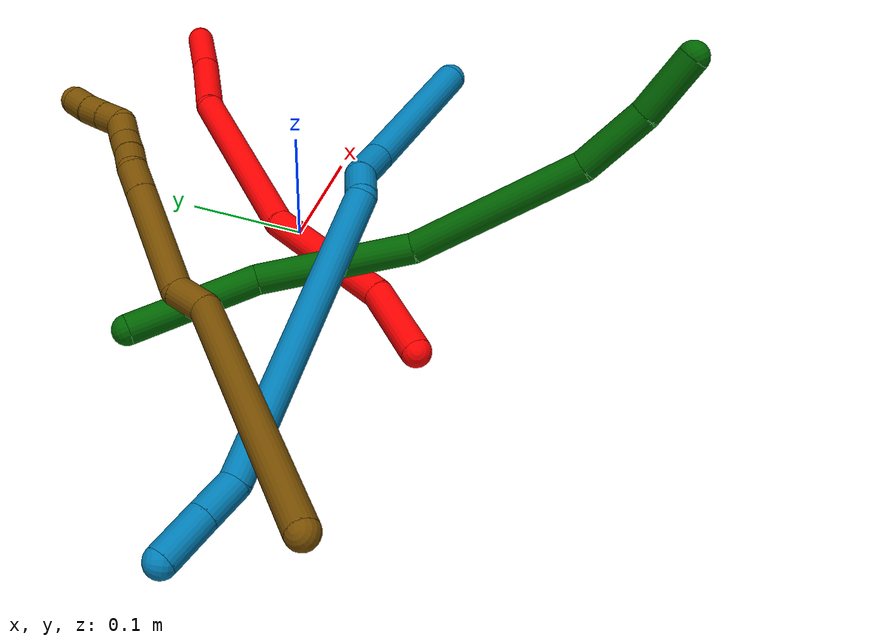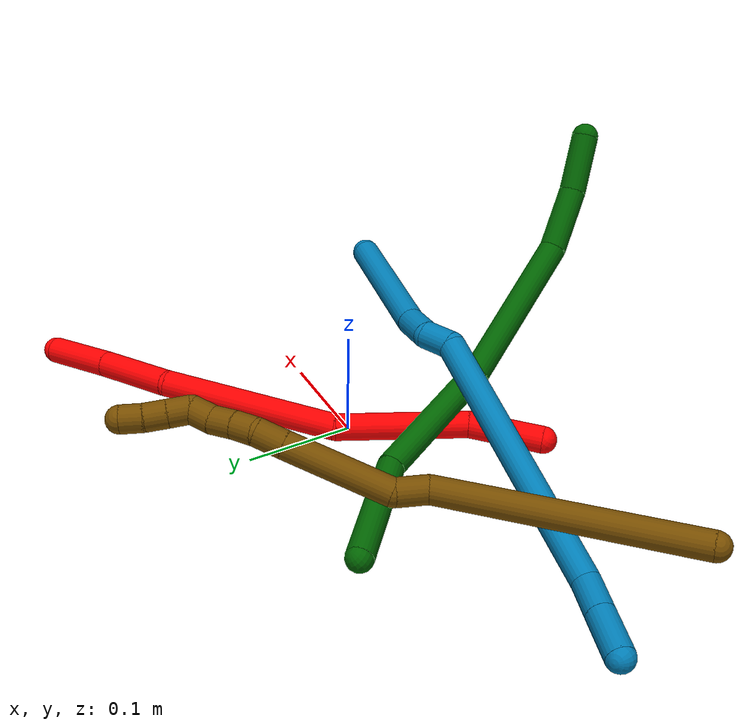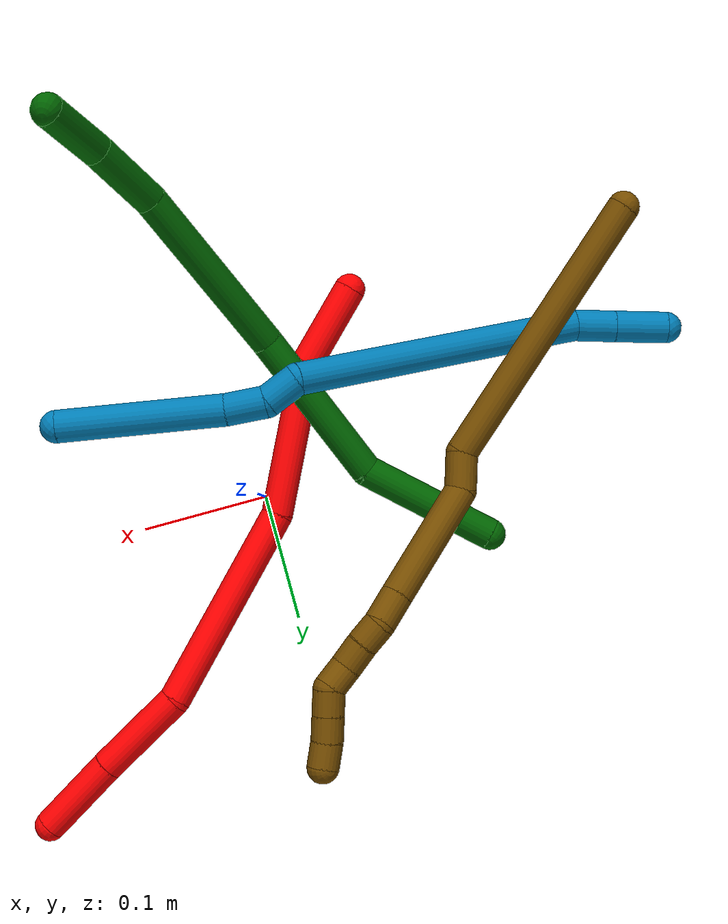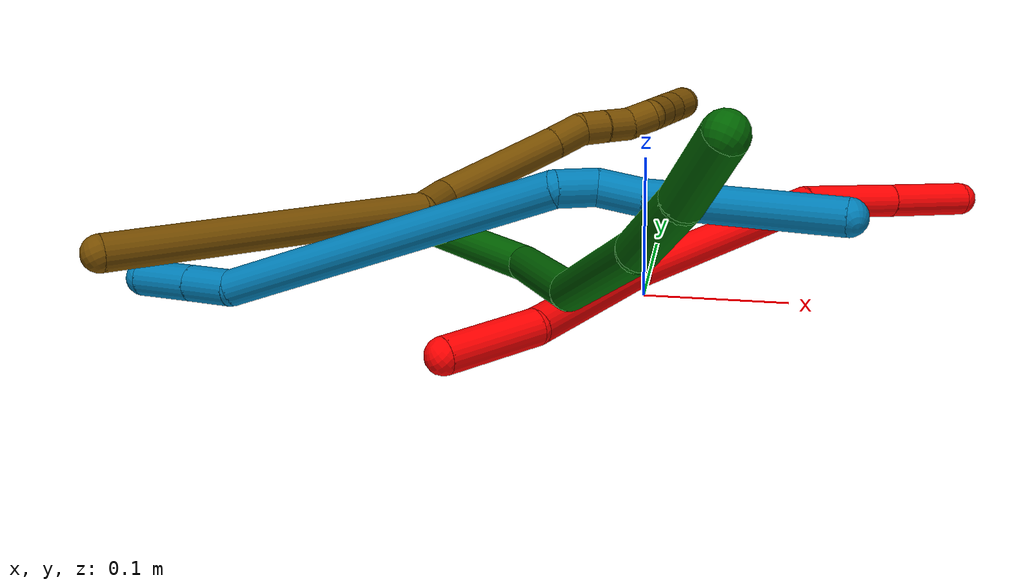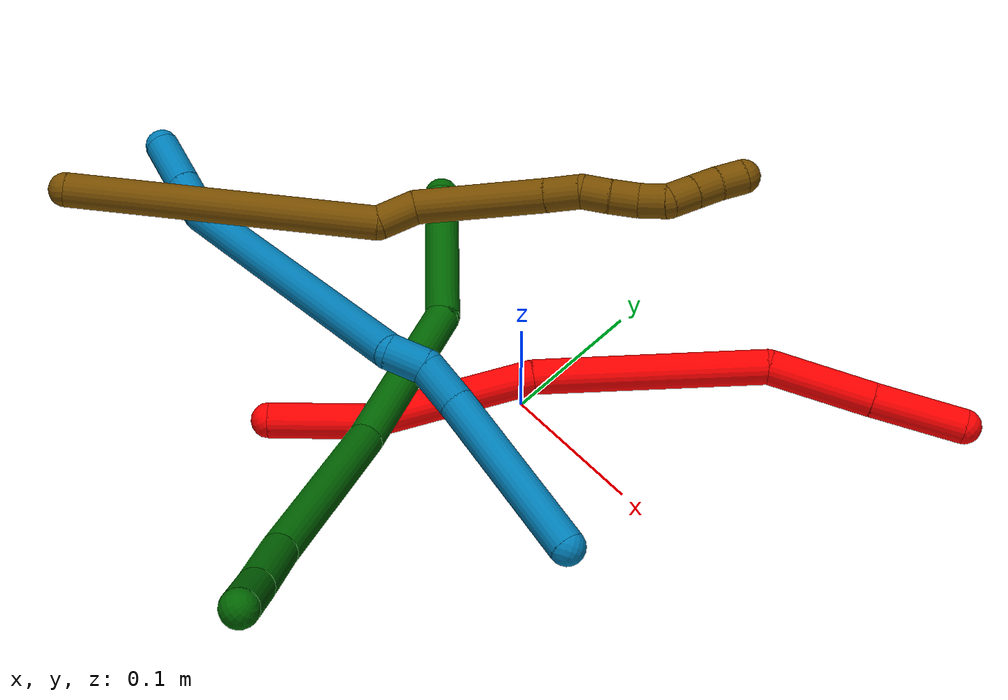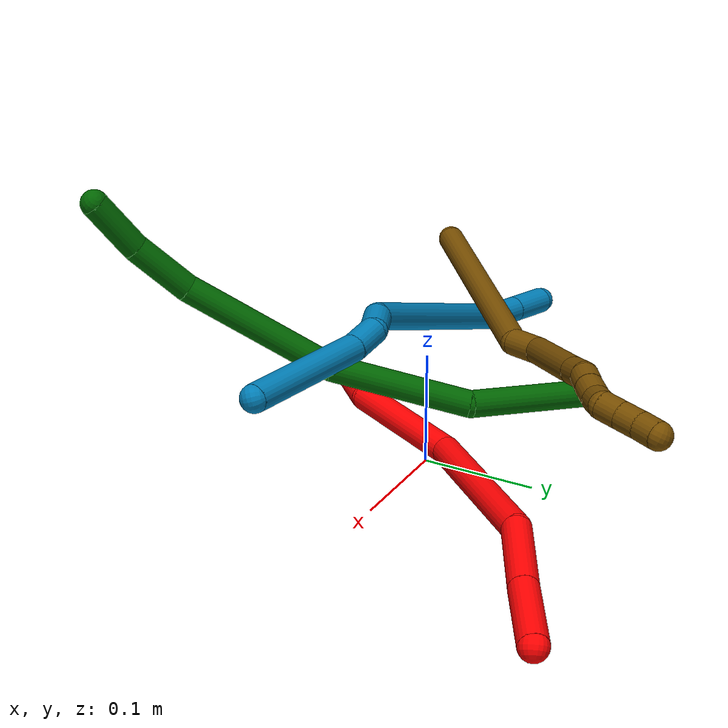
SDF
<sdf version="1.7">
 <world name="default">
  <model name="2">
   <static>0</static>
   <link name="2">
    <collision name="collision-cylinder-e_1_1_4">
     <pose>0.024521 0.01348 -0.019956 -2.54749 0.794426 -1.88085</pose>
     <geometry><cylinder><radius>0.0125</radius><length>0.068738</length></cylinder></geometry>
     <surface>
      <friction><ode><mu>1.16</mu><mu2>1.16</mu2><slip1>0</slip1><slip2>0</slip2></ode></friction>
      <contact><ode><kp>1e+06</kp><kd>1</kd><max_vel>0</max_vel><min_depth>0.001</min_depth></ode></contact>
     </surface>
    </collision>
    <visual name="visual-cylinder-e_1_1_4">
     <pose>0.024521 0.01348 -0.019956 -2.54749 0.794426 -1.88085</pose>
     <geometry><cylinder><radius>0.0125</radius><length>0.068738</length></cylinder></geometry>
     <material><ambient>1 0 0 1</ambient></material>
    </visual>
    <collision name="collision-cylinder-e_2_4_5">
     <pose>0.083125 0.067867 -0.069987 -2.20478 0.5912 -1.08358</pose>
     <geometry><cylinder><radius>0.0125</radius><length>0.122305</length></cylinder></geometry>
     <surface>
      <friction><ode><mu>1.16</mu><mu2>1.16</mu2><slip1>0</slip1><slip2>0</slip2></ode></friction>
      <contact><ode><kp>1e+06</kp><kd>1</kd><max_vel>0</max_vel><min_depth>0.001</min_depth></ode></contact>
     </surface>
    </collision>
    <visual name="visual-cylinder-e_2_4_5">
     <pose>0.083125 0.067867 -0.069987 -2.20478 0.5912 -1.08358</pose>
     <geometry><cylinder><radius>0.0125</radius><length>0.122305</length></cylinder></geometry>
     <material><ambient>1 0 0 1</ambient></material>
    </visual>
    <collision name="collision-cylinder-e_3_5_6">
     <pose>0.179844 0.143005 -0.142937 -2.46782 0.851442 -1.82626</pose>
     <geometry><cylinder><radius>0.0125</radius><length>0.16653</length></cylinder></geometry>
     <surface>
      <friction><ode><mu>1.16</mu><mu2>1.16</mu2><slip1>0</slip1><slip2>0</slip2></ode></friction>
      <contact><ode><kp>1e+06</kp><kd>1</kd><max_vel>0</max_vel><min_depth>0.001</min_depth></ode></contact>
     </surface>
    </collision>
    <visual name="visual-cylinder-e_3_5_6">
     <pose>0.179844 0.143005 -0.142937 -2.46782 0.851442 -1.82626</pose>
     <geometry><cylinder><radius>0.0125</radius><length>0.16653</length></cylinder></geometry>
     <material><ambient>1 0 0 1</ambient></material>
    </visual>
    <collision name="collision-cylinder-e_4_6_7">
     <pose>0.26852 0.18204 -0.212784 -2.96537 0.760025 -2.70627</pose>
     <geometry><cylinder><radius>0.0125</radius><length>0.075598</length></cylinder></geometry>
     <surface>
      <friction><ode><mu>1.16</mu><mu2>1.16</mu2><slip1>0</slip1><slip2>0</slip2></ode></friction>
      <contact><ode><kp>1e+06</kp><kd>1</kd><max_vel>0</max_vel><min_depth>0.001</min_depth></ode></contact>
     </surface>
    </collision>
    <visual name="visual-cylinder-e_4_6_7">
     <pose>0.26852 0.18204 -0.212784 -2.96537 0.760025 -2.70627</pose>
     <geometry><cylinder><radius>0.0125</radius><length>0.075598</length></cylinder></geometry>
     <material><ambient>1 0 0 1</ambient></material>
    </visual>
    <collision name="collision-cylinder-e_5_7_2">
     <pose>0.317297 0.192165 -0.263659 -2.92248 0.748345 -2.59535</pose>
     <geometry><cylinder><radius>0.0125</radius><length>0.066829</length></cylinder></geometry>
     <surface>
      <friction><ode><mu>1.16</mu><mu2>1.16</mu2><slip1>0</slip1><slip2>0</slip2></ode></friction>
      <contact><ode><kp>1e+06</kp><kd>1</kd><max_vel>0</max_vel><min_depth>0.001</min_depth></ode></contact>
     </surface>
    </collision>
    <visual name="visual-cylinder-e_5_7_2">
     <pose>0.317297 0.192165 -0.263659 -2.92248 0.748345 -2.59535</pose>
     <geometry><cylinder><radius>0.0125</radius><length>0.066829</length></cylinder></geometry>
     <material><ambient>1 0 0 1</ambient></material>
    </visual>
    <collision name="collision-sphere-2">
     <pose>0.340034 0.197488 -0.28756 0 -0 0</pose>
     <geometry><sphere><radius>0.0125</radius></sphere></geometry>
     <surface>
      <friction><ode><mu>1.16</mu><mu2>1.16</mu2><slip1>0</slip1><slip2>0</slip2></ode></friction>
      <contact><ode><kp>1e+06</kp><kd>1</kd><max_vel>0</max_vel><min_depth>0.001</min_depth></ode></contact>
     </surface>
    </collision>
    <visual name="visual-sphere-2">
     <pose>0.340034 0.197488 -0.28756 0 -0 0</pose>
     <geometry><sphere><radius>0.0125</radius></sphere></geometry>
     <material><ambient>1 0 0 1</ambient></material>
    </visual>
    <collision name="collision-sphere-7">
     <pose>0.294561 0.186843 -0.239758 0 -0 0</pose>
     <geometry><sphere><radius>0.0125</radius></sphere></geometry>
     <surface>
      <friction><ode><mu>1.16</mu><mu2>1.16</mu2><slip1>0</slip1><slip2>0</slip2></ode></friction>
      <contact><ode><kp>1e+06</kp><kd>1</kd><max_vel>0</max_vel><min_depth>0.001</min_depth></ode></contact>
     </surface>
    </collision>
    <visual name="visual-sphere-7">
     <pose>0.294561 0.186843 -0.239758 0 -0 0</pose>
     <geometry><sphere><radius>0.0125</radius></sphere></geometry>
     <material><ambient>1 0 0 1</ambient></material>
    </visual>
    <collision name="collision-sphere-6">
     <pose>0.242479 0.177237 -0.185811 0 -0 0</pose>
     <geometry><sphere><radius>0.0125</radius></sphere></geometry>
     <surface>
      <friction><ode><mu>1.16</mu><mu2>1.16</mu2><slip1>0</slip1><slip2>0</slip2></ode></friction>
      <contact><ode><kp>1e+06</kp><kd>1</kd><max_vel>0</max_vel><min_depth>0.001</min_depth></ode></contact>
     </surface>
    </collision>
    <visual name="visual-sphere-6">
     <pose>0.242479 0.177237 -0.185811 0 -0 0</pose>
     <geometry><sphere><radius>0.0125</radius></sphere></geometry>
     <material><ambient>1 0 0 1</ambient></material>
    </visual>
    <collision name="collision-sphere-5">
     <pose>0.117209 0.108774 -0.100062 0 -0 0</pose>
     <geometry><sphere><radius>0.0125</radius></sphere></geometry>
     <surface>
      <friction><ode><mu>1.16</mu><mu2>1.16</mu2><slip1>0</slip1><slip2>0</slip2></ode></friction>
      <contact><ode><kp>1e+06</kp><kd>1</kd><max_vel>0</max_vel><min_depth>0.001</min_depth></ode></contact>
     </surface>
    </collision>
    <visual name="visual-sphere-5">
     <pose>0.117209 0.108774 -0.100062 0 -0 0</pose>
     <geometry><sphere><radius>0.0125</radius></sphere></geometry>
     <material><ambient>1 0 0 1</ambient></material>
    </visual>
    <collision name="collision-sphere-1">
     <geometry><sphere><radius>0.0125</radius></sphere></geometry>
     <surface>
      <friction><ode><mu>1.16</mu><mu2>1.16</mu2><slip1>0</slip1><slip2>0</slip2></ode></friction>
      <contact><ode><kp>1e+06</kp><kd>1</kd><max_vel>0</max_vel><min_depth>0.001</min_depth></ode></contact>
     </surface>
    </collision>
    <visual name="visual-sphere-1">
     <geometry><sphere><radius>0.0125</radius></sphere></geometry>
     <material><ambient>1 0 0 1</ambient></material>
    </visual>
    <collision name="collision-sphere-4">
     <pose>0.049042 0.026961 -0.039911 0 -0 0</pose>
     <geometry><sphere><radius>0.0125</radius></sphere></geometry>
     <surface>
      <friction><ode><mu>1.16</mu><mu2>1.16</mu2><slip1>0</slip1><slip2>0</slip2></ode></friction>
      <contact><ode><kp>1e+06</kp><kd>1</kd><max_vel>0</max_vel><min_depth>0.001</min_depth></ode></contact>
     </surface>
    </collision>
    <visual name="visual-sphere-4">
     <pose>0.049042 0.026961 -0.039911 0 -0 0</pose>
     <geometry><sphere><radius>0.0125</radius></sphere></geometry>
     <material><ambient>1 0 0 1</ambient></material>
    </visual>
    <inertial>
     <pose>0.166612 0.119292 -0.134882 0 -0 0</pose>
     <mass>0.5</mass>
     <inertia>
      <ixx>-0.000434</ixx>
      <ixy>0</ixy>
      <ixz>0</ixz>
      <iyy>-3.7e-05</iyy>
      <iyz>0</iyz>
      <izz>-0.000758</izz>
     </inertia>
    </inertial>
   </link>
   <pose>-0.109023 -0.141371 0.012119 0.009749 -0.697214 0.370482</pose>
  </model>
  <model name="6">
   <static>0</static>
   <link name="6">
    <collision name="collision-cylinder-e_1_1_4">
     <pose>0.049926 -0.023185 -0.004822 1.77586 1.1279 1.3218</pose>
     <geometry><cylinder><radius>0.0125</radius><length>0.110516</length></cylinder></geometry>
     <surface>
      <friction><ode><mu>1.16</mu><mu2>1.16</mu2><slip1>0</slip1><slip2>0</slip2></ode></friction>
      <contact><ode><kp>1e+06</kp><kd>1</kd><max_vel>0</max_vel><min_depth>0.001</min_depth></ode></contact>
     </surface>
    </collision>
    <visual name="visual-cylinder-e_1_1_4">
     <pose>0.049926 -0.023185 -0.004822 1.77586 1.1279 1.3218</pose>
     <geometry><cylinder><radius>0.0125</radius><length>0.110516</length></cylinder></geometry>
     <material><ambient>0 0.392157 0.003922 1</ambient></material>
    </visual>
    <collision name="collision-cylinder-e_2_4_5">
     <pose>0.139933 -0.094963 -0.023735 1.85304 0.669949 0.867837</pose>
     <geometry><cylinder><radius>0.0125</radius><length>0.129094</length></cylinder></geometry>
     <surface>
      <friction><ode><mu>1.16</mu><mu2>1.16</mu2><slip1>0</slip1><slip2>0</slip2></ode></friction>
      <contact><ode><kp>1e+06</kp><kd>1</kd><max_vel>0</max_vel><min_depth>0.001</min_depth></ode></contact>
     </surface>
    </collision>
    <visual name="visual-cylinder-e_2_4_5">
     <pose>0.139933 -0.094963 -0.023735 1.85304 0.669949 0.867837</pose>
     <geometry><cylinder><radius>0.0125</radius><length>0.129094</length></cylinder></geometry>
     <material><ambient>0 0.392157 0.003922 1</ambient></material>
    </visual>
    <collision name="collision-cylinder-e_3_5_6">
     <pose>0.218578 -0.205919 -0.034484 1.51724 0.553201 0.525686</pose>
     <geometry><cylinder><radius>0.0125</radius><length>0.146799</length></cylinder></geometry>
     <surface>
      <friction><ode><mu>1.16</mu><mu2>1.16</mu2><slip1>0</slip1><slip2>0</slip2></ode></friction>
      <contact><ode><kp>1e+06</kp><kd>1</kd><max_vel>0</max_vel><min_depth>0.001</min_depth></ode></contact>
     </surface>
    </collision>
    <visual name="visual-cylinder-e_3_5_6">
     <pose>0.218578 -0.205919 -0.034484 1.51724 0.553201 0.525686</pose>
     <geometry><cylinder><radius>0.0125</radius><length>0.146799</length></cylinder></geometry>
     <material><ambient>0 0.392157 0.003922 1</ambient></material>
    </visual>
    <collision name="collision-cylinder-e_4_6_7">
     <pose>0.271513 -0.292791 -0.022214 1.22151 0.503521 0.35631</pose>
     <geometry><cylinder><radius>0.0125</radius><length>0.059564</length></cylinder></geometry>
     <surface>
      <friction><ode><mu>1.16</mu><mu2>1.16</mu2><slip1>0</slip1><slip2>0</slip2></ode></friction>
      <contact><ode><kp>1e+06</kp><kd>1</kd><max_vel>0</max_vel><min_depth>0.001</min_depth></ode></contact>
     </surface>
    </collision>
    <visual name="visual-cylinder-e_4_6_7">
     <pose>0.271513 -0.292791 -0.022214 1.22151 0.503521 0.35631</pose>
     <geometry><cylinder><radius>0.0125</radius><length>0.059564</length></cylinder></geometry>
     <material><ambient>0 0.392157 0.003922 1</ambient></material>
    </visual>
    <collision name="collision-cylinder-e_5_7_2">
     <pose>0.296499 -0.33883 -0.000894 1.04848 0.403881 0.235658</pose>
     <geometry><cylinder><radius>0.0125</radius><length>0.054028</length></cylinder></geometry>
     <surface>
      <friction><ode><mu>1.16</mu><mu2>1.16</mu2><slip1>0</slip1><slip2>0</slip2></ode></friction>
      <contact><ode><kp>1e+06</kp><kd>1</kd><max_vel>0</max_vel><min_depth>0.001</min_depth></ode></contact>
     </surface>
    </collision>
    <visual name="visual-cylinder-e_5_7_2">
     <pose>0.296499 -0.33883 -0.000894 1.04848 0.403881 0.235658</pose>
     <geometry><cylinder><radius>0.0125</radius><length>0.054028</length></cylinder></geometry>
     <material><ambient>0 0.392157 0.003922 1</ambient></material>
    </visual>
    <collision name="collision-sphere-2">
     <pose>0.307116 -0.360359 0.011499 0 -0 0</pose>
     <geometry><sphere><radius>0.0125</radius></sphere></geometry>
     <surface>
      <friction><ode><mu>1.16</mu><mu2>1.16</mu2><slip1>0</slip1><slip2>0</slip2></ode></friction>
      <contact><ode><kp>1e+06</kp><kd>1</kd><max_vel>0</max_vel><min_depth>0.001</min_depth></ode></contact>
     </surface>
    </collision>
    <visual name="visual-sphere-2">
     <pose>0.307116 -0.360359 0.011499 0 -0 0</pose>
     <geometry><sphere><radius>0.0125</radius></sphere></geometry>
     <material><ambient>0 0.392157 0.003922 1</ambient></material>
    </visual>
    <collision name="collision-sphere-7">
     <pose>0.285883 -0.317302 -0.013286 0 -0 0</pose>
     <geometry><sphere><radius>0.0125</radius></sphere></geometry>
     <surface>
      <friction><ode><mu>1.16</mu><mu2>1.16</mu2><slip1>0</slip1><slip2>0</slip2></ode></friction>
      <contact><ode><kp>1e+06</kp><kd>1</kd><max_vel>0</max_vel><min_depth>0.001</min_depth></ode></contact>
     </surface>
    </collision>
    <visual name="visual-sphere-7">
     <pose>0.285883 -0.317302 -0.013286 0 -0 0</pose>
     <geometry><sphere><radius>0.0125</radius></sphere></geometry>
     <material><ambient>0 0.392157 0.003922 1</ambient></material>
    </visual>
    <collision name="collision-sphere-6">
     <pose>0.257143 -0.268281 -0.031141 0 -0 0</pose>
     <geometry><sphere><radius>0.0125</radius></sphere></geometry>
     <surface>
      <friction><ode><mu>1.16</mu><mu2>1.16</mu2><slip1>0</slip1><slip2>0</slip2></ode></friction>
      <contact><ode><kp>1e+06</kp><kd>1</kd><max_vel>0</max_vel><min_depth>0.001</min_depth></ode></contact>
     </surface>
    </collision>
    <visual name="visual-sphere-6">
     <pose>0.257143 -0.268281 -0.031141 0 -0 0</pose>
     <geometry><sphere><radius>0.0125</radius></sphere></geometry>
     <material><ambient>0 0.392157 0.003922 1</ambient></material>
    </visual>
    <collision name="collision-sphere-5">
     <pose>0.180013 -0.143557 -0.037827 0 -0 0</pose>
     <geometry><sphere><radius>0.0125</radius></sphere></geometry>
     <surface>
      <friction><ode><mu>1.16</mu><mu2>1.16</mu2><slip1>0</slip1><slip2>0</slip2></ode></friction>
      <contact><ode><kp>1e+06</kp><kd>1</kd><max_vel>0</max_vel><min_depth>0.001</min_depth></ode></contact>
     </surface>
    </collision>
    <visual name="visual-sphere-5">
     <pose>0.180013 -0.143557 -0.037827 0 -0 0</pose>
     <geometry><sphere><radius>0.0125</radius></sphere></geometry>
     <material><ambient>0 0.392157 0.003922 1</ambient></material>
    </visual>
    <collision name="collision-sphere-1">
     <geometry><sphere><radius>0.0125</radius></sphere></geometry>
     <surface>
      <friction><ode><mu>1.16</mu><mu2>1.16</mu2><slip1>0</slip1><slip2>0</slip2></ode></friction>
      <contact><ode><kp>1e+06</kp><kd>1</kd><max_vel>0</max_vel><min_depth>0.001</min_depth></ode></contact>
     </surface>
    </collision>
    <visual name="visual-sphere-1">
     <geometry><sphere><radius>0.0125</radius></sphere></geometry>
     <material><ambient>0 0.392157 0.003922 1</ambient></material>
    </visual>
    <collision name="collision-sphere-4">
     <pose>0.099853 -0.04637 -0.009644 0 -0 0</pose>
     <geometry><sphere><radius>0.0125</radius></sphere></geometry>
     <surface>
      <friction><ode><mu>1.16</mu><mu2>1.16</mu2><slip1>0</slip1><slip2>0</slip2></ode></friction>
      <contact><ode><kp>1e+06</kp><kd>1</kd><max_vel>0</max_vel><min_depth>0.001</min_depth></ode></contact>
     </surface>
    </collision>
    <visual name="visual-sphere-4">
     <pose>0.099853 -0.04637 -0.009644 0 -0 0</pose>
     <geometry><sphere><radius>0.0125</radius></sphere></geometry>
     <material><ambient>0 0.392157 0.003922 1</ambient></material>
    </visual>
    <inertial>
     <pose>0.175721 -0.161592 -0.020061 0 -0 0</pose>
     <mass>0.5</mass>
     <inertia>
      <ixx>0.000641</ixx>
      <ixy>0</ixy>
      <ixz>0</ixz>
      <iyy>0.000501</iyy>
      <iyz>0</iyz>
      <izz>6.9e-05</izz>
     </inertia>
    </inertial>
   </link>
   <pose>-0.164962 0.07655 0.011491 -0.729615 0.168291 -0.362091</pose>
  </model>
  <model name="9">
   <static>0</static>
   <link name="9">
    <collision name="collision-cylinder-e_1_1_4">
     <pose>0.015943 -0.001834 -0.013129 3.00279 0.877159 2.84734</pose>
     <geometry><cylinder><radius>0.0125</radius><length>0.041469</length></cylinder></geometry>
     <surface>
      <friction><ode><mu>1.16</mu><mu2>1.16</mu2><slip1>0</slip1><slip2>0</slip2></ode></friction>
      <contact><ode><kp>1e+06</kp><kd>1</kd><max_vel>0</max_vel><min_depth>0.001</min_depth></ode></contact>
     </surface>
    </collision>
    <visual name="visual-cylinder-e_1_1_4">
     <pose>0.015943 -0.001834 -0.013129 3.00279 0.877159 2.84734</pose>
     <geometry><cylinder><radius>0.0125</radius><length>0.041469</length></cylinder></geometry>
     <material><ambient>0 0.490196 0.709804 1</ambient></material>
    </visual>
    <collision name="collision-cylinder-e_2_4_5">
     <pose>0.044392 -0.005094 -0.036746 3.00649 0.868404 2.85185</pose>
     <geometry><cylinder><radius>0.0125</radius><length>0.032767</length></cylinder></geometry>
     <surface>
      <friction><ode><mu>1.16</mu><mu2>1.16</mu2><slip1>0</slip1><slip2>0</slip2></ode></friction>
      <contact><ode><kp>1e+06</kp><kd>1</kd><max_vel>0</max_vel><min_depth>0.001</min_depth></ode></contact>
     </surface>
    </collision>
    <visual name="visual-cylinder-e_2_4_5">
     <pose>0.044392 -0.005094 -0.036746 3.00649 0.868404 2.85185</pose>
     <geometry><cylinder><radius>0.0125</radius><length>0.032767</length></cylinder></geometry>
     <material><ambient>0 0.490196 0.709804 1</ambient></material>
    </visual>
    <collision name="collision-cylinder-e_3_5_6">
     <pose>0.164269 -0.039318 -0.087484 2.45786 1.12038 2.10949</pose>
     <geometry><cylinder><radius>0.0125</radius><length>0.238534</length></cylinder></geometry>
     <surface>
      <friction><ode><mu>1.16</mu><mu2>1.16</mu2><slip1>0</slip1><slip2>0</slip2></ode></friction>
      <contact><ode><kp>1e+06</kp><kd>1</kd><max_vel>0</max_vel><min_depth>0.001</min_depth></ode></contact>
     </surface>
    </collision>
    <visual name="visual-cylinder-e_3_5_6">
     <pose>0.164269 -0.039318 -0.087484 2.45786 1.12038 2.10949</pose>
     <geometry><cylinder><radius>0.0125</radius><length>0.238534</length></cylinder></geometry>
     <material><ambient>0 0.490196 0.709804 1</ambient></material>
    </visual>
    <collision name="collision-cylinder-e_4_6_7">
     <pose>0.284996 -0.068925 -0.129087 -1.9715 1.31685 -1.72533</pose>
     <geometry><cylinder><radius>0.0125</radius><length>0.027596</length></cylinder></geometry>
     <surface>
      <friction><ode><mu>1.16</mu><mu2>1.16</mu2><slip1>0</slip1><slip2>0</slip2></ode></friction>
      <contact><ode><kp>1e+06</kp><kd>1</kd><max_vel>0</max_vel><min_depth>0.001</min_depth></ode></contact>
     </surface>
    </collision>
    <visual name="visual-cylinder-e_4_6_7">
     <pose>0.284996 -0.068925 -0.129087 -1.9715 1.31685 -1.72533</pose>
     <geometry><cylinder><radius>0.0125</radius><length>0.027596</length></cylinder></geometry>
     <material><ambient>0 0.490196 0.709804 1</ambient></material>
    </visual>
    <collision name="collision-cylinder-e_5_7_8">
     <pose>0.311444 -0.062766 -0.139074 -2.81064 0.961843 -2.52207</pose>
     <geometry><cylinder><radius>0.0125</radius><length>0.031922</length></cylinder></geometry>
     <surface>
      <friction><ode><mu>1.16</mu><mu2>1.16</mu2><slip1>0</slip1><slip2>0</slip2></ode></friction>
      <contact><ode><kp>1e+06</kp><kd>1</kd><max_vel>0</max_vel><min_depth>0.001</min_depth></ode></contact>
     </surface>
    </collision>
    <visual name="visual-cylinder-e_5_7_8">
     <pose>0.311444 -0.062766 -0.139074 -2.81064 0.961843 -2.52207</pose>
     <geometry><cylinder><radius>0.0125</radius><length>0.031922</length></cylinder></geometry>
     <material><ambient>0 0.490196 0.709804 1</ambient></material>
    </visual>
    <collision name="collision-cylinder-e_6_8_2">
     <pose>0.377072 -0.059462 -0.184005 -3.13229 0.966193 -3.12386</pose>
     <geometry><cylinder><radius>0.0125</radius><length>0.127713</length></cylinder></geometry>
     <surface>
      <friction><ode><mu>1.16</mu><mu2>1.16</mu2><slip1>0</slip1><slip2>0</slip2></ode></friction>
      <contact><ode><kp>1e+06</kp><kd>1</kd><max_vel>0</max_vel><min_depth>0.001</min_depth></ode></contact>
     </surface>
    </collision>
    <visual name="visual-cylinder-e_6_8_2">
     <pose>0.377072 -0.059462 -0.184005 -3.13229 0.966193 -3.12386</pose>
     <geometry><cylinder><radius>0.0125</radius><length>0.127713</length></cylinder></geometry>
     <material><ambient>0 0.490196 0.709804 1</ambient></material>
    </visual>
    <collision name="collision-sphere-2">
     <pose>0.429609 -0.059124 -0.220302 0 -0 0</pose>
     <geometry><sphere><radius>0.0125</radius></sphere></geometry>
     <surface>
      <friction><ode><mu>1.16</mu><mu2>1.16</mu2><slip1>0</slip1><slip2>0</slip2></ode></friction>
      <contact><ode><kp>1e+06</kp><kd>1</kd><max_vel>0</max_vel><min_depth>0.001</min_depth></ode></contact>
     </surface>
    </collision>
    <visual name="visual-sphere-2">
     <pose>0.429609 -0.059124 -0.220302 0 -0 0</pose>
     <geometry><sphere><radius>0.0125</radius></sphere></geometry>
     <material><ambient>0 0.490196 0.709804 1</ambient></material>
    </visual>
    <collision name="collision-sphere-4">
     <pose>0.031886 -0.003668 -0.026258 0 -0 0</pose>
     <geometry><sphere><radius>0.0125</radius></sphere></geometry>
     <surface>
      <friction><ode><mu>1.16</mu><mu2>1.16</mu2><slip1>0</slip1><slip2>0</slip2></ode></friction>
      <contact><ode><kp>1e+06</kp><kd>1</kd><max_vel>0</max_vel><min_depth>0.001</min_depth></ode></contact>
     </surface>
    </collision>
    <visual name="visual-sphere-4">
     <pose>0.031886 -0.003668 -0.026258 0 -0 0</pose>
     <geometry><sphere><radius>0.0125</radius></sphere></geometry>
     <material><ambient>0 0.490196 0.709804 1</ambient></material>
    </visual>
    <collision name="collision-sphere-1">
     <geometry><sphere><radius>0.0125</radius></sphere></geometry>
     <surface>
      <friction><ode><mu>1.16</mu><mu2>1.16</mu2><slip1>0</slip1><slip2>0</slip2></ode></friction>
      <contact><ode><kp>1e+06</kp><kd>1</kd><max_vel>0</max_vel><min_depth>0.001</min_depth></ode></contact>
     </surface>
    </collision>
    <visual name="visual-sphere-1">
     <geometry><sphere><radius>0.0125</radius></sphere></geometry>
     <material><ambient>0 0.490196 0.709804 1</ambient></material>
    </visual>
    <collision name="collision-sphere-8">
     <pose>0.324536 -0.059799 -0.147708 0 -0 0</pose>
     <geometry><sphere><radius>0.0125</radius></sphere></geometry>
     <surface>
      <friction><ode><mu>1.16</mu><mu2>1.16</mu2><slip1>0</slip1><slip2>0</slip2></ode></friction>
      <contact><ode><kp>1e+06</kp><kd>1</kd><max_vel>0</max_vel><min_depth>0.001</min_depth></ode></contact>
     </surface>
    </collision>
    <visual name="visual-sphere-8">
     <pose>0.324536 -0.059799 -0.147708 0 -0 0</pose>
     <geometry><sphere><radius>0.0125</radius></sphere></geometry>
     <material><ambient>0 0.490196 0.709804 1</ambient></material>
    </visual>
    <collision name="collision-sphere-5">
     <pose>0.056897 -0.006519 -0.047234 0 -0 0</pose>
     <geometry><sphere><radius>0.0125</radius></sphere></geometry>
     <surface>
      <friction><ode><mu>1.16</mu><mu2>1.16</mu2><slip1>0</slip1><slip2>0</slip2></ode></friction>
      <contact><ode><kp>1e+06</kp><kd>1</kd><max_vel>0</max_vel><min_depth>0.001</min_depth></ode></contact>
     </surface>
    </collision>
    <visual name="visual-sphere-5">
     <pose>0.056897 -0.006519 -0.047234 0 -0 0</pose>
     <geometry><sphere><radius>0.0125</radius></sphere></geometry>
     <material><ambient>0 0.490196 0.709804 1</ambient></material>
    </visual>
    <collision name="collision-sphere-6">
     <pose>0.271641 -0.072116 -0.127735 0 -0 0</pose>
     <geometry><sphere><radius>0.0125</radius></sphere></geometry>
     <surface>
      <friction><ode><mu>1.16</mu><mu2>1.16</mu2><slip1>0</slip1><slip2>0</slip2></ode></friction>
      <contact><ode><kp>1e+06</kp><kd>1</kd><max_vel>0</max_vel><min_depth>0.001</min_depth></ode></contact>
     </surface>
    </collision>
    <visual name="visual-sphere-6">
     <pose>0.271641 -0.072116 -0.127735 0 -0 0</pose>
     <geometry><sphere><radius>0.0125</radius></sphere></geometry>
     <material><ambient>0 0.490196 0.709804 1</ambient></material>
    </visual>
    <collision name="collision-sphere-7">
     <pose>0.298352 -0.065733 -0.13044 0 -0 0</pose>
     <geometry><sphere><radius>0.0125</radius></sphere></geometry>
     <surface>
      <friction><ode><mu>1.16</mu><mu2>1.16</mu2><slip1>0</slip1><slip2>0</slip2></ode></friction>
      <contact><ode><kp>1e+06</kp><kd>1</kd><max_vel>0</max_vel><min_depth>0.001</min_depth></ode></contact>
     </surface>
    </collision>
    <visual name="visual-sphere-7">
     <pose>0.298352 -0.065733 -0.13044 0 -0 0</pose>
     <geometry><sphere><radius>0.0125</radius></sphere></geometry>
     <material><ambient>0 0.490196 0.709804 1</ambient></material>
    </visual>
    <inertial>
     <pose>0.214526 -0.042243 -0.108236 0 -0 0</pose>
     <mass>0.5</mass>
     <inertia>
      <ixx>9.3e-05</ixx>
      <ixy>0</ixy>
      <ixz>0</ixz>
      <iyy>0.001626</iyy>
      <iyz>0</iyz>
      <izz>-0.000893</izz>
     </inertia>
    </inertial>
   </link>
   <pose>-0.34425 -0.045006 0.011489 -1.27709 -0.215266 0.40409</pose>
  </model>
  <model name="12">
   <static>0</static>
   <link name="12">
    <collision name="collision-cylinder-e_1_1_4">
     <pose>0.040717 0.101294 0.027333 -1.30724 0.370199 -0.284888</pose>
     <geometry><cylinder><radius>0.0125</radius><length>0.225082</length></cylinder></geometry>
     <surface>
      <friction><ode><mu>1.16</mu><mu2>1.16</mu2><slip1>0</slip1><slip2>0</slip2></ode></friction>
      <contact><ode><kp>1e+06</kp><kd>1</kd><max_vel>0</max_vel><min_depth>0.001</min_depth></ode></contact>
     </surface>
    </collision>
    <visual name="visual-cylinder-e_1_1_4">
     <pose>0.040717 0.101294 0.027333 -1.30724 0.370199 -0.284888</pose>
     <geometry><cylinder><radius>0.0125</radius><length>0.225082</length></cylinder></geometry>
     <material><ambient>0.466667 0.301961 0 1</ambient></material>
    </visual>
    <collision name="collision-cylinder-e_2_4_5">
     <pose>0.092049 0.212896 0.052887 -1.74157 0.792703 -0.922247</pose>
     <geometry><cylinder><radius>0.0125</radius><length>0.029804</length></cylinder></geometry>
     <surface>
      <friction><ode><mu>1.16</mu><mu2>1.16</mu2><slip1>0</slip1><slip2>0</slip2></ode></friction>
      <contact><ode><kp>1e+06</kp><kd>1</kd><max_vel>0</max_vel><min_depth>0.001</min_depth></ode></contact>
     </surface>
    </collision>
    <visual name="visual-cylinder-e_2_4_5">
     <pose>0.092049 0.212896 0.052887 -1.74157 0.792703 -0.922247</pose>
     <geometry><cylinder><radius>0.0125</radius><length>0.029804</length></cylinder></geometry>
     <material><ambient>0.466667 0.301961 0 1</ambient></material>
    </visual>
    <collision name="collision-cylinder-e_3_5_6">
     <pose>0.114573 0.270199 0.049344 -1.60836 0.248035 -0.257429</pose>
     <geometry><cylinder><radius>0.0125</radius><length>0.097025</length></cylinder></geometry>
     <surface>
      <friction><ode><mu>1.16</mu><mu2>1.16</mu2><slip1>0</slip1><slip2>0</slip2></ode></friction>
      <contact><ode><kp>1e+06</kp><kd>1</kd><max_vel>0</max_vel><min_depth>0.001</min_depth></ode></contact>
     </surface>
    </collision>
    <visual name="visual-cylinder-e_3_5_6">
     <pose>0.114573 0.270199 0.049344 -1.60836 0.248035 -0.257429</pose>
     <geometry><cylinder><radius>0.0125</radius><length>0.097025</length></cylinder></geometry>
     <material><ambient>0.466667 0.301961 0 1</ambient></material>
    </visual>
    <collision name="collision-cylinder-e_4_6_7">
     <pose>0.129539 0.329761 0.046727 -1.63838 0.238015 -0.254496</pose>
     <geometry><cylinder><radius>0.0125</radius><length>0.025924</length></cylinder></geometry>
     <surface>
      <friction><ode><mu>1.16</mu><mu2>1.16</mu2><slip1>0</slip1><slip2>0</slip2></ode></friction>
      <contact><ode><kp>1e+06</kp><kd>1</kd><max_vel>0</max_vel><min_depth>0.001</min_depth></ode></contact>
     </surface>
    </collision>
    <visual name="visual-cylinder-e_4_6_7">
     <pose>0.129539 0.329761 0.046727 -1.63838 0.238015 -0.254496</pose>
     <geometry><cylinder><radius>0.0125</radius><length>0.025924</length></cylinder></geometry>
     <material><ambient>0.466667 0.301961 0 1</ambient></material>
    </visual>
    <collision name="collision-cylinder-e_5_7_8">
     <pose>0.135037 0.351702 0.0485 -1.29782 0.245884 -0.1869</pose>
     <geometry><cylinder><radius>0.0125</radius><length>0.020071</length></cylinder></geometry>
     <surface>
      <friction><ode><mu>1.16</mu><mu2>1.16</mu2><slip1>0</slip1><slip2>0</slip2></ode></friction>
      <contact><ode><kp>1e+06</kp><kd>1</kd><max_vel>0</max_vel><min_depth>0.001</min_depth></ode></contact>
     </surface>
    </collision>
    <visual name="visual-cylinder-e_5_7_8">
     <pose>0.135037 0.351702 0.0485 -1.29782 0.245884 -0.1869</pose>
     <geometry><cylinder><radius>0.0125</radius><length>0.020071</length></cylinder></geometry>
     <material><ambient>0.466667 0.301961 0 1</ambient></material>
    </visual>
    <collision name="collision-cylinder-e_6_8_9">
     <pose>0.140884 0.370751 0.053855 -1.29573 0.326393 -0.247966</pose>
     <geometry><cylinder><radius>0.0125</radius><length>0.021229</length></cylinder></geometry>
     <surface>
      <friction><ode><mu>1.16</mu><mu2>1.16</mu2><slip1>0</slip1><slip2>0</slip2></ode></friction>
      <contact><ode><kp>1e+06</kp><kd>1</kd><max_vel>0</max_vel><min_depth>0.001</min_depth></ode></contact>
     </surface>
    </collision>
    <visual name="visual-cylinder-e_6_8_9">
     <pose>0.140884 0.370751 0.053855 -1.29573 0.326393 -0.247966</pose>
     <geometry><cylinder><radius>0.0125</radius><length>0.021229</length></cylinder></geometry>
     <material><ambient>0.466667 0.301961 0 1</ambient></material>
    </visual>
    <collision name="collision-cylinder-e_7_9_10">
     <pose>0.146072 0.390577 0.057142 -1.51609 0.173883 -0.164665</pose>
     <geometry><cylinder><radius>0.0125</radius><length>0.02064</length></cylinder></geometry>
     <surface>
      <friction><ode><mu>1.16</mu><mu2>1.16</mu2><slip1>0</slip1><slip2>0</slip2></ode></friction>
      <contact><ode><kp>1e+06</kp><kd>1</kd><max_vel>0</max_vel><min_depth>0.001</min_depth></ode></contact>
     </surface>
    </collision>
    <visual name="visual-cylinder-e_7_9_10">
     <pose>0.146072 0.390577 0.057142 -1.51609 0.173883 -0.164665</pose>
     <geometry><cylinder><radius>0.0125</radius><length>0.02064</length></cylinder></geometry>
     <material><ambient>0.466667 0.301961 0 1</ambient></material>
    </visual>
    <collision name="collision-cylinder-e_8_10_11">
     <pose>0.155555 0.407222 0.057616 -1.5834 0.869825 -0.879492</pose>
     <geometry><cylinder><radius>0.0125</radius><length>0.020144</length></cylinder></geometry>
     <surface>
      <friction><ode><mu>1.16</mu><mu2>1.16</mu2><slip1>0</slip1><slip2>0</slip2></ode></friction>
      <contact><ode><kp>1e+06</kp><kd>1</kd><max_vel>0</max_vel><min_depth>0.001</min_depth></ode></contact>
     </surface>
    </collision>
    <visual name="visual-cylinder-e_8_10_11">
     <pose>0.155555 0.407222 0.057616 -1.5834 0.869825 -0.879492</pose>
     <geometry><cylinder><radius>0.0125</radius><length>0.020144</length></cylinder></geometry>
     <material><ambient>0.466667 0.301961 0 1</ambient></material>
    </visual>
    <collision name="collision-cylinder-e_9_11_12">
     <pose>0.170847 0.420249 0.057405 -1.5905 0.860432 -0.875467</pose>
     <geometry><cylinder><radius>0.0125</radius><length>0.020037</length></cylinder></geometry>
     <surface>
      <friction><ode><mu>1.16</mu><mu2>1.16</mu2><slip1>0</slip1><slip2>0</slip2></ode></friction>
      <contact><ode><kp>1e+06</kp><kd>1</kd><max_vel>0</max_vel><min_depth>0.001</min_depth></ode></contact>
     </surface>
    </collision>
    <visual name="visual-cylinder-e_9_11_12">
     <pose>0.170847 0.420249 0.057405 -1.5905 0.860432 -0.875467</pose>
     <geometry><cylinder><radius>0.0125</radius><length>0.020037</length></cylinder></geometry>
     <material><ambient>0.466667 0.301961 0 1</ambient></material>
    </visual>
    <collision name="collision-cylinder-e_10_12_2">
     <pose>0.185185 0.434196 0.057326 -1.56418 0.737918 -0.733476</pose>
     <geometry><cylinder><radius>0.0125</radius><length>0.020044</length></cylinder></geometry>
     <surface>
      <friction><ode><mu>1.16</mu><mu2>1.16</mu2><slip1>0</slip1><slip2>0</slip2></ode></friction>
      <contact><ode><kp>1e+06</kp><kd>1</kd><max_vel>0</max_vel><min_depth>0.001</min_depth></ode></contact>
     </surface>
    </collision>
    <visual name="visual-cylinder-e_10_12_2">
     <pose>0.185185 0.434196 0.057326 -1.56418 0.737918 -0.733476</pose>
     <geometry><cylinder><radius>0.0125</radius><length>0.020044</length></cylinder></geometry>
     <material><ambient>0.466667 0.301961 0 1</ambient></material>
    </visual>
    <collision name="collision-sphere-2">
     <pose>0.191927 0.441611 0.057375 0 -0 0</pose>
     <geometry><sphere><radius>0.0125</radius></sphere></geometry>
     <surface>
      <friction><ode><mu>1.16</mu><mu2>1.16</mu2><slip1>0</slip1><slip2>0</slip2></ode></friction>
      <contact><ode><kp>1e+06</kp><kd>1</kd><max_vel>0</max_vel><min_depth>0.001</min_depth></ode></contact>
     </surface>
    </collision>
    <visual name="visual-sphere-2">
     <pose>0.191927 0.441611 0.057375 0 -0 0</pose>
     <geometry><sphere><radius>0.0125</radius></sphere></geometry>
     <material><ambient>0.466667 0.301961 0 1</ambient></material>
    </visual>
    <collision name="collision-sphere-12">
     <pose>0.178443 0.426781 0.057277 0 -0 0</pose>
     <geometry><sphere><radius>0.0125</radius></sphere></geometry>
     <surface>
      <friction><ode><mu>1.16</mu><mu2>1.16</mu2><slip1>0</slip1><slip2>0</slip2></ode></friction>
      <contact><ode><kp>1e+06</kp><kd>1</kd><max_vel>0</max_vel><min_depth>0.001</min_depth></ode></contact>
     </surface>
    </collision>
    <visual name="visual-sphere-12">
     <pose>0.178443 0.426781 0.057277 0 -0 0</pose>
     <geometry><sphere><radius>0.0125</radius></sphere></geometry>
     <material><ambient>0.466667 0.301961 0 1</ambient></material>
    </visual>
    <collision name="collision-sphere-11">
     <pose>0.163252 0.413718 0.057534 0 -0 0</pose>
     <geometry><sphere><radius>0.0125</radius></sphere></geometry>
     <surface>
      <friction><ode><mu>1.16</mu><mu2>1.16</mu2><slip1>0</slip1><slip2>0</slip2></ode></friction>
      <contact><ode><kp>1e+06</kp><kd>1</kd><max_vel>0</max_vel><min_depth>0.001</min_depth></ode></contact>
     </surface>
    </collision>
    <visual name="visual-sphere-11">
     <pose>0.163252 0.413718 0.057534 0 -0 0</pose>
     <geometry><sphere><radius>0.0125</radius></sphere></geometry>
     <material><ambient>0.466667 0.301961 0 1</ambient></material>
    </visual>
    <collision name="collision-sphere-10">
     <pose>0.147858 0.400726 0.057698 0 -0 0</pose>
     <geometry><sphere><radius>0.0125</radius></sphere></geometry>
     <surface>
      <friction><ode><mu>1.16</mu><mu2>1.16</mu2><slip1>0</slip1><slip2>0</slip2></ode></friction>
      <contact><ode><kp>1e+06</kp><kd>1</kd><max_vel>0</max_vel><min_depth>0.001</min_depth></ode></contact>
     </surface>
    </collision>
    <visual name="visual-sphere-10">
     <pose>0.147858 0.400726 0.057698 0 -0 0</pose>
     <geometry><sphere><radius>0.0125</radius></sphere></geometry>
     <material><ambient>0.466667 0.301961 0 1</ambient></material>
    </visual>
    <collision name="collision-sphere-9">
     <pose>0.144287 0.380428 0.056586 0 -0 0</pose>
     <geometry><sphere><radius>0.0125</radius></sphere></geometry>
     <surface>
      <friction><ode><mu>1.16</mu><mu2>1.16</mu2><slip1>0</slip1><slip2>0</slip2></ode></friction>
      <contact><ode><kp>1e+06</kp><kd>1</kd><max_vel>0</max_vel><min_depth>0.001</min_depth></ode></contact>
     </surface>
    </collision>
    <visual name="visual-sphere-9">
     <pose>0.144287 0.380428 0.056586 0 -0 0</pose>
     <geometry><sphere><radius>0.0125</radius></sphere></geometry>
     <material><ambient>0.466667 0.301961 0 1</ambient></material>
    </visual>
    <collision name="collision-sphere-4">
     <pose>0.081435 0.202588 0.054665 0 -0 0</pose>
     <geometry><sphere><radius>0.0125</radius></sphere></geometry>
     <surface>
      <friction><ode><mu>1.16</mu><mu2>1.16</mu2><slip1>0</slip1><slip2>0</slip2></ode></friction>
      <contact><ode><kp>1e+06</kp><kd>1</kd><max_vel>0</max_vel><min_depth>0.001</min_depth></ode></contact>
     </surface>
    </collision>
    <visual name="visual-sphere-4">
     <pose>0.081435 0.202588 0.054665 0 -0 0</pose>
     <geometry><sphere><radius>0.0125</radius></sphere></geometry>
     <material><ambient>0.466667 0.301961 0 1</ambient></material>
    </visual>
    <collision name="collision-sphere-1">
     <geometry><sphere><radius>0.0125</radius></sphere></geometry>
     <surface>
      <friction><ode><mu>1.16</mu><mu2>1.16</mu2><slip1>0</slip1><slip2>0</slip2></ode></friction>
      <contact><ode><kp>1e+06</kp><kd>1</kd><max_vel>0</max_vel><min_depth>0.001</min_depth></ode></contact>
     </surface>
    </collision>
    <visual name="visual-sphere-1">
     <geometry><sphere><radius>0.0125</radius></sphere></geometry>
     <material><ambient>0.466667 0.301961 0 1</ambient></material>
    </visual>
    <collision name="collision-sphere-8">
     <pose>0.13748 0.361075 0.051124 0 -0 0</pose>
     <geometry><sphere><radius>0.0125</radius></sphere></geometry>
     <surface>
      <friction><ode><mu>1.16</mu><mu2>1.16</mu2><slip1>0</slip1><slip2>0</slip2></ode></friction>
      <contact><ode><kp>1e+06</kp><kd>1</kd><max_vel>0</max_vel><min_depth>0.001</min_depth></ode></contact>
     </surface>
    </collision>
    <visual name="visual-sphere-8">
     <pose>0.13748 0.361075 0.051124 0 -0 0</pose>
     <geometry><sphere><radius>0.0125</radius></sphere></geometry>
     <material><ambient>0.466667 0.301961 0 1</ambient></material>
    </visual>
    <collision name="collision-sphere-5">
     <pose>0.102663 0.223204 0.05111 0 -0 0</pose>
     <geometry><sphere><radius>0.0125</radius></sphere></geometry>
     <surface>
      <friction><ode><mu>1.16</mu><mu2>1.16</mu2><slip1>0</slip1><slip2>0</slip2></ode></friction>
      <contact><ode><kp>1e+06</kp><kd>1</kd><max_vel>0</max_vel><min_depth>0.001</min_depth></ode></contact>
     </surface>
    </collision>
    <visual name="visual-sphere-5">
     <pose>0.102663 0.223204 0.05111 0 -0 0</pose>
     <geometry><sphere><radius>0.0125</radius></sphere></geometry>
     <material><ambient>0.466667 0.301961 0 1</ambient></material>
    </visual>
    <collision name="collision-sphere-6">
     <pose>0.126483 0.317194 0.047578 0 -0 0</pose>
     <geometry><sphere><radius>0.0125</radius></sphere></geometry>
     <surface>
      <friction><ode><mu>1.16</mu><mu2>1.16</mu2><slip1>0</slip1><slip2>0</slip2></ode></friction>
      <contact><ode><kp>1e+06</kp><kd>1</kd><max_vel>0</max_vel><min_depth>0.001</min_depth></ode></contact>
     </surface>
    </collision>
    <visual name="visual-sphere-6">
     <pose>0.126483 0.317194 0.047578 0 -0 0</pose>
     <geometry><sphere><radius>0.0125</radius></sphere></geometry>
     <material><ambient>0.466667 0.301961 0 1</ambient></material>
    </visual>
    <collision name="collision-sphere-7">
     <pose>0.132595 0.342329 0.045876 0 -0 0</pose>
     <geometry><sphere><radius>0.0125</radius></sphere></geometry>
     <surface>
      <friction><ode><mu>1.16</mu><mu2>1.16</mu2><slip1>0</slip1><slip2>0</slip2></ode></friction>
      <contact><ode><kp>1e+06</kp><kd>1</kd><max_vel>0</max_vel><min_depth>0.001</min_depth></ode></contact>
     </surface>
    </collision>
    <visual name="visual-sphere-7">
     <pose>0.132595 0.342329 0.045876 0 -0 0</pose>
     <geometry><sphere><radius>0.0125</radius></sphere></geometry>
     <material><ambient>0.466667 0.301961 0 1</ambient></material>
    </visual>
    <inertial>
     <pose>0.090735 0.224454 0.040967 0 -0 0</pose>
     <mass>0.5</mass>
     <inertia>
      <ixx>0.000682</ixx>
      <ixy>0</ixy>
      <ixz>0</ixz>
      <iyy>9.9e-05</iyy>
      <iyz>0</iyz>
      <izz>-0.001322</izz>
     </inertia>
    </inertial>
   </link>
   <pose>-0.326694 -0.139085 0.066827 2.78465 0.418224 1.91554</pose>
  </model>
 </world>
</sdf>
